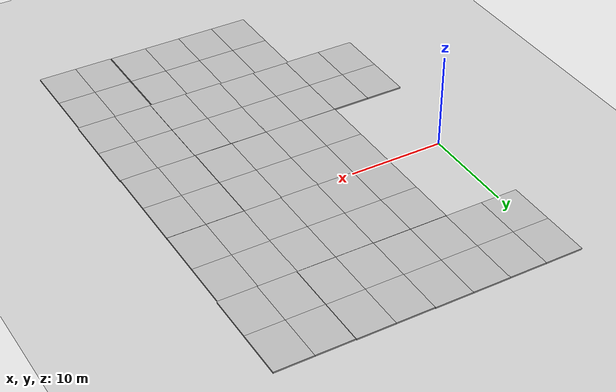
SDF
<sdf version="1.7">
 <world name="default">
  <model name="ground_plane">
   <static>1</static>
   <link name="link">
    <collision name="collision">
     <geometry><plane><normal>0 0 1</normal><size>100 100</size></plane></geometry>
     <surface><friction><ode><mu>100</mu><mu2>50</mu2></ode></friction></surface>
    </collision>
    <visual name="visual">
     <cast_shadows>0</cast_shadows>
     <geometry><plane><normal>0 0 1</normal><size>100 100</size></plane></geometry>
     <material>
      <script><uri>file://media/materials/scripts/gazebo.material</uri><name>Gazebo/Grey</name></script>
     </material>
    </visual>
   </link>
  </model>
  <model name="mud_box_0_clone">
   <static>1</static>
   <link name="link">
    <collision name="collision"><geometry><box><size>8 10 0.2</size></box></geometry></collision>
    <visual name="visual_1">
     <pose>-2 2.5 0 0 -0 0</pose>
     <cast_shadows>0</cast_shadows>
     <geometry><box><size>4 5 0.2</size></box></geometry>
     <material>
      <script>
       <uri>model://mud_box/materials/scripts</uri>
       <uri>model://mud_box/materials/textures</uri>
       <name>vrc/mud</name>
      </script>
     </material>
    </visual>
    <visual name="visual_2">
     <pose>2 2.5 0 0 -0 0</pose>
     <cast_shadows>0</cast_shadows>
     <geometry><box><size>4 5 0.2</size></box></geometry>
     <material>
      <script>
       <uri>model://mud_box/materials/scripts</uri>
       <uri>model://mud_box/materials/textures</uri>
       <name>vrc/mud</name>
      </script>
     </material>
    </visual>
    <visual name="visual_3">
     <pose>2 -2.5 0 0 -0 0</pose>
     <cast_shadows>0</cast_shadows>
     <geometry><box><size>4 5 0.2</size></box></geometry>
     <material>
      <script>
       <uri>model://mud_box/materials/scripts</uri>
       <uri>model://mud_box/materials/textures</uri>
       <name>vrc/mud</name>
      </script>
     </material>
    </visual>
    <visual name="visual_4">
     <pose>-2 -2.5 0 0 -0 0</pose>
     <cast_shadows>0</cast_shadows>
     <geometry><box><size>4 5 0.2</size></box></geometry>
     <material>
      <script>
       <uri>model://mud_box/materials/scripts</uri>
       <uri>model://mud_box/materials/textures</uri>
       <name>vrc/mud</name>
      </script>
     </material>
    </visual>
   </link>
   <pose>9.85757 -5.14216 0 0 -0 0</pose>
  </model>
  <model name="mud_box_0_clone_clone">
   <static>1</static>
   <link name="link">
    <collision name="collision"><geometry><box><size>8 10 0.2</size></box></geometry></collision>
    <visual name="visual_1">
     <pose>-2 2.5 0 0 -0 0</pose>
     <cast_shadows>0</cast_shadows>
     <geometry><box><size>4 5 0.2</size></box></geometry>
     <material>
      <script>
       <uri>model://mud_box/materials/scripts</uri>
       <uri>model://mud_box/materials/textures</uri>
       <name>vrc/mud</name>
      </script>
     </material>
    </visual>
    <visual name="visual_2">
     <pose>2 2.5 0 0 -0 0</pose>
     <cast_shadows>0</cast_shadows>
     <geometry><box><size>4 5 0.2</size></box></geometry>
     <material>
      <script>
       <uri>model://mud_box/materials/scripts</uri>
       <uri>model://mud_box/materials/textures</uri>
       <name>vrc/mud</name>
      </script>
     </material>
    </visual>
    <visual name="visual_3">
     <pose>2 -2.5 0 0 -0 0</pose>
     <cast_shadows>0</cast_shadows>
     <geometry><box><size>4 5 0.2</size></box></geometry>
     <material>
      <script>
       <uri>model://mud_box/materials/scripts</uri>
       <uri>model://mud_box/materials/textures</uri>
       <name>vrc/mud</name>
      </script>
     </material>
    </visual>
    <visual name="visual_4">
     <pose>-2 -2.5 0 0 -0 0</pose>
     <cast_shadows>0</cast_shadows>
     <geometry><box><size>4 5 0.2</size></box></geometry>
     <material>
      <script>
       <uri>model://mud_box/materials/scripts</uri>
       <uri>model://mud_box/materials/textures</uri>
       <name>vrc/mud</name>
      </script>
     </material>
    </visual>
   </link>
   <pose>17.7661 -5.12084 0 0 -0 0</pose>
  </model>
  <model name="mud_box_0_clone_clone_0">
   <static>1</static>
   <link name="link">
    <collision name="collision"><geometry><box><size>8 10 0.2</size></box></geometry></collision>
    <visual name="visual_1">
     <pose>-2 2.5 0 0 -0 0</pose>
     <cast_shadows>0</cast_shadows>
     <geometry><box><size>4 5 0.2</size></box></geometry>
     <material>
      <script>
       <uri>model://mud_box/materials/scripts</uri>
       <uri>model://mud_box/materials/textures</uri>
       <name>vrc/mud</name>
      </script>
     </material>
    </visual>
    <visual name="visual_2">
     <pose>2 2.5 0 0 -0 0</pose>
     <cast_shadows>0</cast_shadows>
     <geometry><box><size>4 5 0.2</size></box></geometry>
     <material>
      <script>
       <uri>model://mud_box/materials/scripts</uri>
       <uri>model://mud_box/materials/textures</uri>
       <name>vrc/mud</name>
      </script>
     </material>
    </visual>
    <visual name="visual_3">
     <pose>2 -2.5 0 0 -0 0</pose>
     <cast_shadows>0</cast_shadows>
     <geometry><box><size>4 5 0.2</size></box></geometry>
     <material>
      <script>
       <uri>model://mud_box/materials/scripts</uri>
       <uri>model://mud_box/materials/textures</uri>
       <name>vrc/mud</name>
      </script>
     </material>
    </visual>
    <visual name="visual_4">
     <pose>-2 -2.5 0 0 -0 0</pose>
     <cast_shadows>0</cast_shadows>
     <geometry><box><size>4 5 0.2</size></box></geometry>
     <material>
      <script>
       <uri>model://mud_box/materials/scripts</uri>
       <uri>model://mud_box/materials/textures</uri>
       <name>vrc/mud</name>
      </script>
     </material>
    </visual>
   </link>
   <pose>17.8432 4.79546 0 0 -0 0</pose>
  </model>
  <model name="mud_box_3">
   <static>1</static>
   <link name="link">
    <collision name="collision"><geometry><box><size>8 10 0.2</size></box></geometry></collision>
    <visual name="visual_1">
     <pose>-2 2.5 0 0 -0 0</pose>
     <cast_shadows>0</cast_shadows>
     <geometry><box><size>4 5 0.2</size></box></geometry>
     <material>
      <script>
       <uri>model://mud_box/materials/scripts</uri>
       <uri>model://mud_box/materials/textures</uri>
       <name>vrc/mud</name>
      </script>
     </material>
    </visual>
    <visual name="visual_2">
     <pose>2 2.5 0 0 -0 0</pose>
     <cast_shadows>0</cast_shadows>
     <geometry><box><size>4 5 0.2</size></box></geometry>
     <material>
      <script>
       <uri>model://mud_box/materials/scripts</uri>
       <uri>model://mud_box/materials/textures</uri>
       <name>vrc/mud</name>
      </script>
     </material>
    </visual>
    <visual name="visual_3">
     <pose>2 -2.5 0 0 -0 0</pose>
     <cast_shadows>0</cast_shadows>
     <geometry><box><size>4 5 0.2</size></box></geometry>
     <material>
      <script>
       <uri>model://mud_box/materials/scripts</uri>
       <uri>model://mud_box/materials/textures</uri>
       <name>vrc/mud</name>
      </script>
     </material>
    </visual>
    <visual name="visual_4">
     <pose>-2 -2.5 0 0 -0 0</pose>
     <cast_shadows>0</cast_shadows>
     <geometry><box><size>4 5 0.2</size></box></geometry>
     <material>
      <script>
       <uri>model://mud_box/materials/scripts</uri>
       <uri>model://mud_box/materials/textures</uri>
       <name>vrc/mud</name>
      </script>
     </material>
    </visual>
   </link>
   <pose>9.84986 4.82173 0 0 -0 0</pose>
  </model>
  <model name="mud_box_0_clone_clone_2_clone_clone_clone">
   <static>1</static>
   <link name="link">
    <collision name="collision"><geometry><box><size>8 10 0.2</size></box></geometry></collision>
    <visual name="visual_1">
     <pose>-2 2.5 0 0 -0 0</pose>
     <cast_shadows>0</cast_shadows>
     <geometry><box><size>4 5 0.2</size></box></geometry>
     <material>
      <script>
       <uri>model://mud_box/materials/scripts</uri>
       <uri>model://mud_box/materials/textures</uri>
       <name>vrc/mud</name>
      </script>
     </material>
    </visual>
    <visual name="visual_2">
     <pose>2 2.5 0 0 -0 0</pose>
     <cast_shadows>0</cast_shadows>
     <geometry><box><size>4 5 0.2</size></box></geometry>
     <material>
      <script>
       <uri>model://mud_box/materials/scripts</uri>
       <uri>model://mud_box/materials/textures</uri>
       <name>vrc/mud</name>
      </script>
     </material>
    </visual>
    <visual name="visual_3">
     <pose>2 -2.5 0 0 -0 0</pose>
     <cast_shadows>0</cast_shadows>
     <geometry><box><size>4 5 0.2</size></box></geometry>
     <material>
      <script>
       <uri>model://mud_box/materials/scripts</uri>
       <uri>model://mud_box/materials/textures</uri>
       <name>vrc/mud</name>
      </script>
     </material>
    </visual>
    <visual name="visual_4">
     <pose>-2 -2.5 0 0 -0 0</pose>
     <cast_shadows>0</cast_shadows>
     <geometry><box><size>4 5 0.2</size></box></geometry>
     <material>
      <script>
       <uri>model://mud_box/materials/scripts</uri>
       <uri>model://mud_box/materials/textures</uri>
       <name>vrc/mud</name>
      </script>
     </material>
    </visual>
   </link>
   <pose>1.89708 14.8478 0 0 -0 0</pose>
  </model>
  <model name="mud_box_0_clone_clone_2_clone_clone_clone_clone">
   <static>1</static>
   <link name="link">
    <collision name="collision"><geometry><box><size>8 10 0.2</size></box></geometry></collision>
    <visual name="visual_1">
     <pose>-2 2.5 0 0 -0 0</pose>
     <cast_shadows>0</cast_shadows>
     <geometry><box><size>4 5 0.2</size></box></geometry>
     <material>
      <script>
       <uri>model://mud_box/materials/scripts</uri>
       <uri>model://mud_box/materials/textures</uri>
       <name>vrc/mud</name>
      </script>
     </material>
    </visual>
    <visual name="visual_2">
     <pose>2 2.5 0 0 -0 0</pose>
     <cast_shadows>0</cast_shadows>
     <geometry><box><size>4 5 0.2</size></box></geometry>
     <material>
      <script>
       <uri>model://mud_box/materials/scripts</uri>
       <uri>model://mud_box/materials/textures</uri>
       <name>vrc/mud</name>
      </script>
     </material>
    </visual>
    <visual name="visual_3">
     <pose>2 -2.5 0 0 -0 0</pose>
     <cast_shadows>0</cast_shadows>
     <geometry><box><size>4 5 0.2</size></box></geometry>
     <material>
      <script>
       <uri>model://mud_box/materials/scripts</uri>
       <uri>model://mud_box/materials/textures</uri>
       <name>vrc/mud</name>
      </script>
     </material>
    </visual>
    <visual name="visual_4">
     <pose>-2 -2.5 0 0 -0 0</pose>
     <cast_shadows>0</cast_shadows>
     <geometry><box><size>4 5 0.2</size></box></geometry>
     <material>
      <script>
       <uri>model://mud_box/materials/scripts</uri>
       <uri>model://mud_box/materials/textures</uri>
       <name>vrc/mud</name>
      </script>
     </material>
    </visual>
   </link>
   <pose>9.84452 14.8594 0 0 -0 0</pose>
  </model>
  <model name="mud_box_0_clone_clone_2_clone_clone_clone_clone_0">
   <static>1</static>
   <link name="link">
    <collision name="collision"><geometry><box><size>8 10 0.2</size></box></geometry></collision>
    <visual name="visual_1">
     <pose>-2 2.5 0 0 -0 0</pose>
     <cast_shadows>0</cast_shadows>
     <geometry><box><size>4 5 0.2</size></box></geometry>
     <material>
      <script>
       <uri>model://mud_box/materials/scripts</uri>
       <uri>model://mud_box/materials/textures</uri>
       <name>vrc/mud</name>
      </script>
     </material>
    </visual>
    <visual name="visual_2">
     <pose>2 2.5 0 0 -0 0</pose>
     <cast_shadows>0</cast_shadows>
     <geometry><box><size>4 5 0.2</size></box></geometry>
     <material>
      <script>
       <uri>model://mud_box/materials/scripts</uri>
       <uri>model://mud_box/materials/textures</uri>
       <name>vrc/mud</name>
      </script>
     </material>
    </visual>
    <visual name="visual_3">
     <pose>2 -2.5 0 0 -0 0</pose>
     <cast_shadows>0</cast_shadows>
     <geometry><box><size>4 5 0.2</size></box></geometry>
     <material>
      <script>
       <uri>model://mud_box/materials/scripts</uri>
       <uri>model://mud_box/materials/textures</uri>
       <name>vrc/mud</name>
      </script>
     </material>
    </visual>
    <visual name="visual_4">
     <pose>-2 -2.5 0 0 -0 0</pose>
     <cast_shadows>0</cast_shadows>
     <geometry><box><size>4 5 0.2</size></box></geometry>
     <material>
      <script>
       <uri>model://mud_box/materials/scripts</uri>
       <uri>model://mud_box/materials/textures</uri>
       <name>vrc/mud</name>
      </script>
     </material>
    </visual>
   </link>
   <pose>17.8409 14.8151 0 0 -0 0</pose>
  </model>
  <model name="mud_box_0_clone_clone_2_clone_clone_clone_clone_3">
   <static>1</static>
   <link name="link">
    <collision name="collision"><geometry><box><size>8 10 0.2</size></box></geometry></collision>
    <visual name="visual_1">
     <pose>-2 2.5 0 0 -0 0</pose>
     <cast_shadows>0</cast_shadows>
     <geometry><box><size>4 5 0.2</size></box></geometry>
     <material>
      <script>
       <uri>model://mud_box/materials/scripts</uri>
       <uri>model://mud_box/materials/textures</uri>
       <name>vrc/mud</name>
      </script>
     </material>
    </visual>
    <visual name="visual_2">
     <pose>2 2.5 0 0 -0 0</pose>
     <cast_shadows>0</cast_shadows>
     <geometry><box><size>4 5 0.2</size></box></geometry>
     <material>
      <script>
       <uri>model://mud_box/materials/scripts</uri>
       <uri>model://mud_box/materials/textures</uri>
       <name>vrc/mud</name>
      </script>
     </material>
    </visual>
    <visual name="visual_3">
     <pose>2 -2.5 0 0 -0 0</pose>
     <cast_shadows>0</cast_shadows>
     <geometry><box><size>4 5 0.2</size></box></geometry>
     <material>
      <script>
       <uri>model://mud_box/materials/scripts</uri>
       <uri>model://mud_box/materials/textures</uri>
       <name>vrc/mud</name>
      </script>
     </material>
    </visual>
    <visual name="visual_4">
     <pose>-2 -2.5 0 0 -0 0</pose>
     <cast_shadows>0</cast_shadows>
     <geometry><box><size>4 5 0.2</size></box></geometry>
     <material>
      <script>
       <uri>model://mud_box/materials/scripts</uri>
       <uri>model://mud_box/materials/textures</uri>
       <name>vrc/mud</name>
      </script>
     </material>
    </visual>
   </link>
   <pose>1.90613 -15.1869 0 0 -0 0</pose>
  </model>
  <model name="mud_box_0_clone_clone_2_clone_clone_clone_clone_4">
   <static>1</static>
   <link name="link">
    <collision name="collision"><geometry><box><size>8 10 0.2</size></box></geometry></collision>
    <visual name="visual_1">
     <pose>-2 2.5 0 0 -0 0</pose>
     <cast_shadows>0</cast_shadows>
     <geometry><box><size>4 5 0.2</size></box></geometry>
     <material>
      <script>
       <uri>model://mud_box/materials/scripts</uri>
       <uri>model://mud_box/materials/textures</uri>
       <name>vrc/mud</name>
      </script>
     </material>
    </visual>
    <visual name="visual_2">
     <pose>2 2.5 0 0 -0 0</pose>
     <cast_shadows>0</cast_shadows>
     <geometry><box><size>4 5 0.2</size></box></geometry>
     <material>
      <script>
       <uri>model://mud_box/materials/scripts</uri>
       <uri>model://mud_box/materials/textures</uri>
       <name>vrc/mud</name>
      </script>
     </material>
    </visual>
    <visual name="visual_3">
     <pose>2 -2.5 0 0 -0 0</pose>
     <cast_shadows>0</cast_shadows>
     <geometry><box><size>4 5 0.2</size></box></geometry>
     <material>
      <script>
       <uri>model://mud_box/materials/scripts</uri>
       <uri>model://mud_box/materials/textures</uri>
       <name>vrc/mud</name>
      </script>
     </material>
    </visual>
    <visual name="visual_4">
     <pose>-2 -2.5 0 0 -0 0</pose>
     <cast_shadows>0</cast_shadows>
     <geometry><box><size>4 5 0.2</size></box></geometry>
     <material>
      <script>
       <uri>model://mud_box/materials/scripts</uri>
       <uri>model://mud_box/materials/textures</uri>
       <name>vrc/mud</name>
      </script>
     </material>
    </visual>
   </link>
   <pose>9.90799 -15.155 0 0 -0 0</pose>
  </model>
  <model name="mud_box_0_clone_clone_2_clone_clone_clone_clone_5">
   <static>1</static>
   <link name="link">
    <collision name="collision"><geometry><box><size>8 10 0.2</size></box></geometry></collision>
    <visual name="visual_1">
     <pose>-2 2.5 0 0 -0 0</pose>
     <cast_shadows>0</cast_shadows>
     <geometry><box><size>4 5 0.2</size></box></geometry>
     <material>
      <script>
       <uri>model://mud_box/materials/scripts</uri>
       <uri>model://mud_box/materials/textures</uri>
       <name>vrc/mud</name>
      </script>
     </material>
    </visual>
    <visual name="visual_2">
     <pose>2 2.5 0 0 -0 0</pose>
     <cast_shadows>0</cast_shadows>
     <geometry><box><size>4 5 0.2</size></box></geometry>
     <material>
      <script>
       <uri>model://mud_box/materials/scripts</uri>
       <uri>model://mud_box/materials/textures</uri>
       <name>vrc/mud</name>
      </script>
     </material>
    </visual>
    <visual name="visual_3">
     <pose>2 -2.5 0 0 -0 0</pose>
     <cast_shadows>0</cast_shadows>
     <geometry><box><size>4 5 0.2</size></box></geometry>
     <material>
      <script>
       <uri>model://mud_box/materials/scripts</uri>
       <uri>model://mud_box/materials/textures</uri>
       <name>vrc/mud</name>
      </script>
     </material>
    </visual>
    <visual name="visual_4">
     <pose>-2 -2.5 0 0 -0 0</pose>
     <cast_shadows>0</cast_shadows>
     <geometry><box><size>4 5 0.2</size></box></geometry>
     <material>
      <script>
       <uri>model://mud_box/materials/scripts</uri>
       <uri>model://mud_box/materials/textures</uri>
       <name>vrc/mud</name>
      </script>
     </material>
    </visual>
   </link>
   <pose>17.8484 -15.1511 0 0 -0 0</pose>
  </model>
  <model name="mud_box_0_clone_clone_2_clone_clone_clone_clone_6">
   <static>1</static>
   <link name="link">
    <collision name="collision"><geometry><box><size>8 10 0.2</size></box></geometry></collision>
    <visual name="visual_1">
     <pose>-2 2.5 0 0 -0 0</pose>
     <cast_shadows>0</cast_shadows>
     <geometry><box><size>4 5 0.2</size></box></geometry>
     <material>
      <script>
       <uri>model://mud_box/materials/scripts</uri>
       <uri>model://mud_box/materials/textures</uri>
       <name>vrc/mud</name>
      </script>
     </material>
    </visual>
    <visual name="visual_2">
     <pose>2 2.5 0 0 -0 0</pose>
     <cast_shadows>0</cast_shadows>
     <geometry><box><size>4 5 0.2</size></box></geometry>
     <material>
      <script>
       <uri>model://mud_box/materials/scripts</uri>
       <uri>model://mud_box/materials/textures</uri>
       <name>vrc/mud</name>
      </script>
     </material>
    </visual>
    <visual name="visual_3">
     <pose>2 -2.5 0 0 -0 0</pose>
     <cast_shadows>0</cast_shadows>
     <geometry><box><size>4 5 0.2</size></box></geometry>
     <material>
      <script>
       <uri>model://mud_box/materials/scripts</uri>
       <uri>model://mud_box/materials/textures</uri>
       <name>vrc/mud</name>
      </script>
     </material>
    </visual>
    <visual name="visual_4">
     <pose>-2 -2.5 0 0 -0 0</pose>
     <cast_shadows>0</cast_shadows>
     <geometry><box><size>4 5 0.2</size></box></geometry>
     <material>
      <script>
       <uri>model://mud_box/materials/scripts</uri>
       <uri>model://mud_box/materials/textures</uri>
       <name>vrc/mud</name>
      </script>
     </material>
    </visual>
   </link>
   <pose>25.8649 -15.1213 0 0 -0 0</pose>
  </model>
  <model name="mud_box_0_clone_clone_2_clone_clone_clone_clone_7">
   <static>1</static>
   <link name="link">
    <collision name="collision"><geometry><box><size>8 10 0.2</size></box></geometry></collision>
    <visual name="visual_1">
     <pose>-2 2.5 0 0 -0 0</pose>
     <cast_shadows>0</cast_shadows>
     <geometry><box><size>4 5 0.2</size></box></geometry>
     <material>
      <script>
       <uri>model://mud_box/materials/scripts</uri>
       <uri>model://mud_box/materials/textures</uri>
       <name>vrc/mud</name>
      </script>
     </material>
    </visual>
    <visual name="visual_2">
     <pose>2 2.5 0 0 -0 0</pose>
     <cast_shadows>0</cast_shadows>
     <geometry><box><size>4 5 0.2</size></box></geometry>
     <material>
      <script>
       <uri>model://mud_box/materials/scripts</uri>
       <uri>model://mud_box/materials/textures</uri>
       <name>vrc/mud</name>
      </script>
     </material>
    </visual>
    <visual name="visual_3">
     <pose>2 -2.5 0 0 -0 0</pose>
     <cast_shadows>0</cast_shadows>
     <geometry><box><size>4 5 0.2</size></box></geometry>
     <material>
      <script>
       <uri>model://mud_box/materials/scripts</uri>
       <uri>model://mud_box/materials/textures</uri>
       <name>vrc/mud</name>
      </script>
     </material>
    </visual>
    <visual name="visual_4">
     <pose>-2 -2.5 0 0 -0 0</pose>
     <cast_shadows>0</cast_shadows>
     <geometry><box><size>4 5 0.2</size></box></geometry>
     <material>
      <script>
       <uri>model://mud_box/materials/scripts</uri>
       <uri>model://mud_box/materials/textures</uri>
       <name>vrc/mud</name>
      </script>
     </material>
    </visual>
   </link>
   <pose>25.8043 -5.13568 0 0 -0 0</pose>
  </model>
  <model name="mud_box_0_clone_clone_2_clone_clone_clone_clone_8">
   <static>1</static>
   <link name="link">
    <collision name="collision"><geometry><box><size>8 10 0.2</size></box></geometry></collision>
    <visual name="visual_1">
     <pose>-2 2.5 0 0 -0 0</pose>
     <cast_shadows>0</cast_shadows>
     <geometry><box><size>4 5 0.2</size></box></geometry>
     <material>
      <script>
       <uri>model://mud_box/materials/scripts</uri>
       <uri>model://mud_box/materials/textures</uri>
       <name>vrc/mud</name>
      </script>
     </material>
    </visual>
    <visual name="visual_2">
     <pose>2 2.5 0 0 -0 0</pose>
     <cast_shadows>0</cast_shadows>
     <geometry><box><size>4 5 0.2</size></box></geometry>
     <material>
      <script>
       <uri>model://mud_box/materials/scripts</uri>
       <uri>model://mud_box/materials/textures</uri>
       <name>vrc/mud</name>
      </script>
     </material>
    </visual>
    <visual name="visual_3">
     <pose>2 -2.5 0 0 -0 0</pose>
     <cast_shadows>0</cast_shadows>
     <geometry><box><size>4 5 0.2</size></box></geometry>
     <material>
      <script>
       <uri>model://mud_box/materials/scripts</uri>
       <uri>model://mud_box/materials/textures</uri>
       <name>vrc/mud</name>
      </script>
     </material>
    </visual>
    <visual name="visual_4">
     <pose>-2 -2.5 0 0 -0 0</pose>
     <cast_shadows>0</cast_shadows>
     <geometry><box><size>4 5 0.2</size></box></geometry>
     <material>
      <script>
       <uri>model://mud_box/materials/scripts</uri>
       <uri>model://mud_box/materials/textures</uri>
       <name>vrc/mud</name>
      </script>
     </material>
    </visual>
   </link>
   <pose>25.7987 4.88856 0 0 -0 0</pose>
  </model>
  <model name="mud_box_0_clone_clone_2_clone_clone_clone_clone_9">
   <static>1</static>
   <link name="link">
    <collision name="collision"><geometry><box><size>8 10 0.2</size></box></geometry></collision>
    <visual name="visual_1">
     <pose>-2 2.5 0 0 -0 0</pose>
     <cast_shadows>0</cast_shadows>
     <geometry><box><size>4 5 0.2</size></box></geometry>
     <material>
      <script>
       <uri>model://mud_box/materials/scripts</uri>
       <uri>model://mud_box/materials/textures</uri>
       <name>vrc/mud</name>
      </script>
     </material>
    </visual>
    <visual name="visual_2">
     <pose>2 2.5 0 0 -0 0</pose>
     <cast_shadows>0</cast_shadows>
     <geometry><box><size>4 5 0.2</size></box></geometry>
     <material>
      <script>
       <uri>model://mud_box/materials/scripts</uri>
       <uri>model://mud_box/materials/textures</uri>
       <name>vrc/mud</name>
      </script>
     </material>
    </visual>
    <visual name="visual_3">
     <pose>2 -2.5 0 0 -0 0</pose>
     <cast_shadows>0</cast_shadows>
     <geometry><box><size>4 5 0.2</size></box></geometry>
     <material>
      <script>
       <uri>model://mud_box/materials/scripts</uri>
       <uri>model://mud_box/materials/textures</uri>
       <name>vrc/mud</name>
      </script>
     </material>
    </visual>
    <visual name="visual_4">
     <pose>-2 -2.5 0 0 -0 0</pose>
     <cast_shadows>0</cast_shadows>
     <geometry><box><size>4 5 0.2</size></box></geometry>
     <material>
      <script>
       <uri>model://mud_box/materials/scripts</uri>
       <uri>model://mud_box/materials/textures</uri>
       <name>vrc/mud</name>
      </script>
     </material>
    </visual>
   </link>
   <pose>25.8792 14.7712 0 0 -0 0</pose>
  </model>
  <model name="mud_box_0_clone_clone_2_clone_clone_clone_clone_18">
   <static>1</static>
   <link name="link">
    <collision name="collision"><geometry><box><size>8 10 0.2</size></box></geometry></collision>
    <visual name="visual_1">
     <pose>-2 2.5 0 0 -0 0</pose>
     <cast_shadows>0</cast_shadows>
     <geometry><box><size>4 5 0.2</size></box></geometry>
     <material>
      <script>
       <uri>model://mud_box/materials/scripts</uri>
       <uri>model://mud_box/materials/textures</uri>
       <name>vrc/mud</name>
      </script>
     </material>
    </visual>
    <visual name="visual_2">
     <pose>2 2.5 0 0 -0 0</pose>
     <cast_shadows>0</cast_shadows>
     <geometry><box><size>4 5 0.2</size></box></geometry>
     <material>
      <script>
       <uri>model://mud_box/materials/scripts</uri>
       <uri>model://mud_box/materials/textures</uri>
       <name>vrc/mud</name>
      </script>
     </material>
    </visual>
    <visual name="visual_3">
     <pose>2 -2.5 0 0 -0 0</pose>
     <cast_shadows>0</cast_shadows>
     <geometry><box><size>4 5 0.2</size></box></geometry>
     <material>
      <script>
       <uri>model://mud_box/materials/scripts</uri>
       <uri>model://mud_box/materials/textures</uri>
       <name>vrc/mud</name>
      </script>
     </material>
    </visual>
    <visual name="visual_4">
     <pose>-2 -2.5 0 0 -0 0</pose>
     <cast_shadows>0</cast_shadows>
     <geometry><box><size>4 5 0.2</size></box></geometry>
     <material>
      <script>
       <uri>model://mud_box/materials/scripts</uri>
       <uri>model://mud_box/materials/textures</uri>
       <name>vrc/mud</name>
      </script>
     </material>
    </visual>
   </link>
   <pose>9.66355 -25.086 0 0 -0 0</pose>
  </model>
  <model name="mud_box_0_clone_clone_2_clone_clone_clone_clone_19">
   <static>1</static>
   <link name="link">
    <collision name="collision"><geometry><box><size>8 10 0.2</size></box></geometry></collision>
    <visual name="visual_1">
     <pose>-2 2.5 0 0 -0 0</pose>
     <cast_shadows>0</cast_shadows>
     <geometry><box><size>4 5 0.2</size></box></geometry>
     <material>
      <script>
       <uri>model://mud_box/materials/scripts</uri>
       <uri>model://mud_box/materials/textures</uri>
       <name>vrc/mud</name>
      </script>
     </material>
    </visual>
    <visual name="visual_2">
     <pose>2 2.5 0 0 -0 0</pose>
     <cast_shadows>0</cast_shadows>
     <geometry><box><size>4 5 0.2</size></box></geometry>
     <material>
      <script>
       <uri>model://mud_box/materials/scripts</uri>
       <uri>model://mud_box/materials/textures</uri>
       <name>vrc/mud</name>
      </script>
     </material>
    </visual>
    <visual name="visual_3">
     <pose>2 -2.5 0 0 -0 0</pose>
     <cast_shadows>0</cast_shadows>
     <geometry><box><size>4 5 0.2</size></box></geometry>
     <material>
      <script>
       <uri>model://mud_box/materials/scripts</uri>
       <uri>model://mud_box/materials/textures</uri>
       <name>vrc/mud</name>
      </script>
     </material>
    </visual>
    <visual name="visual_4">
     <pose>-2 -2.5 0 0 -0 0</pose>
     <cast_shadows>0</cast_shadows>
     <geometry><box><size>4 5 0.2</size></box></geometry>
     <material>
      <script>
       <uri>model://mud_box/materials/scripts</uri>
       <uri>model://mud_box/materials/textures</uri>
       <name>vrc/mud</name>
      </script>
     </material>
    </visual>
   </link>
   <pose>17.6604 -25.0688 0 0 -0 0</pose>
  </model>
  <model name="mud_box_0_clone_clone_2_clone_clone_clone_clone_20">
   <static>1</static>
   <link name="link">
    <collision name="collision"><geometry><box><size>8 10 0.2</size></box></geometry></collision>
    <visual name="visual_1">
     <pose>-2 2.5 0 0 -0 0</pose>
     <cast_shadows>0</cast_shadows>
     <geometry><box><size>4 5 0.2</size></box></geometry>
     <material>
      <script>
       <uri>model://mud_box/materials/scripts</uri>
       <uri>model://mud_box/materials/textures</uri>
       <name>vrc/mud</name>
      </script>
     </material>
    </visual>
    <visual name="visual_2">
     <pose>2 2.5 0 0 -0 0</pose>
     <cast_shadows>0</cast_shadows>
     <geometry><box><size>4 5 0.2</size></box></geometry>
     <material>
      <script>
       <uri>model://mud_box/materials/scripts</uri>
       <uri>model://mud_box/materials/textures</uri>
       <name>vrc/mud</name>
      </script>
     </material>
    </visual>
    <visual name="visual_3">
     <pose>2 -2.5 0 0 -0 0</pose>
     <cast_shadows>0</cast_shadows>
     <geometry><box><size>4 5 0.2</size></box></geometry>
     <material>
      <script>
       <uri>model://mud_box/materials/scripts</uri>
       <uri>model://mud_box/materials/textures</uri>
       <name>vrc/mud</name>
      </script>
     </material>
    </visual>
    <visual name="visual_4">
     <pose>-2 -2.5 0 0 -0 0</pose>
     <cast_shadows>0</cast_shadows>
     <geometry><box><size>4 5 0.2</size></box></geometry>
     <material>
      <script>
       <uri>model://mud_box/materials/scripts</uri>
       <uri>model://mud_box/materials/textures</uri>
       <name>vrc/mud</name>
      </script>
     </material>
    </visual>
   </link>
   <pose>25.7846 -25.1023 0 0 -0 0</pose>
  </model>
 </world>
</sdf>
